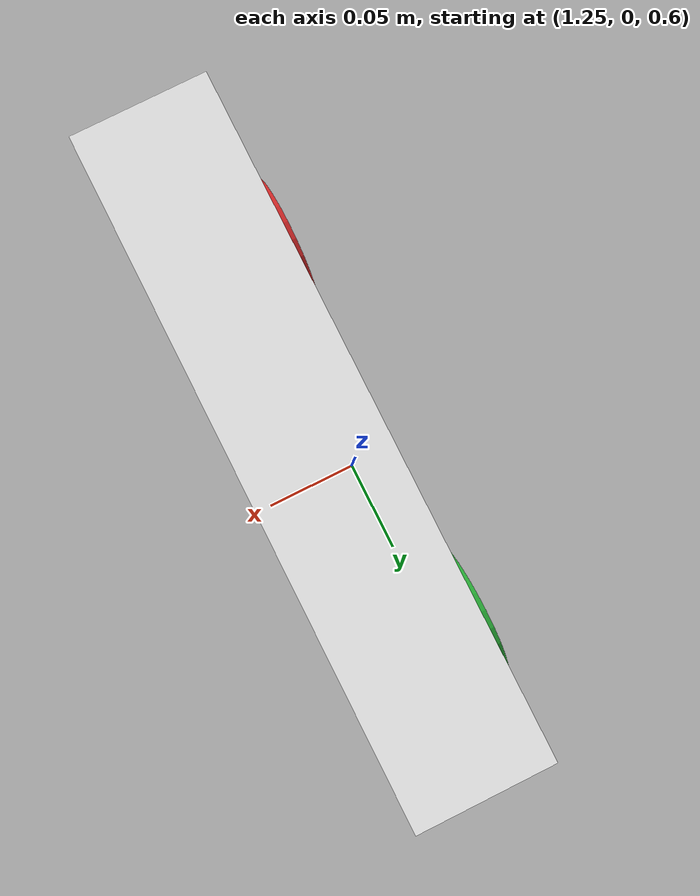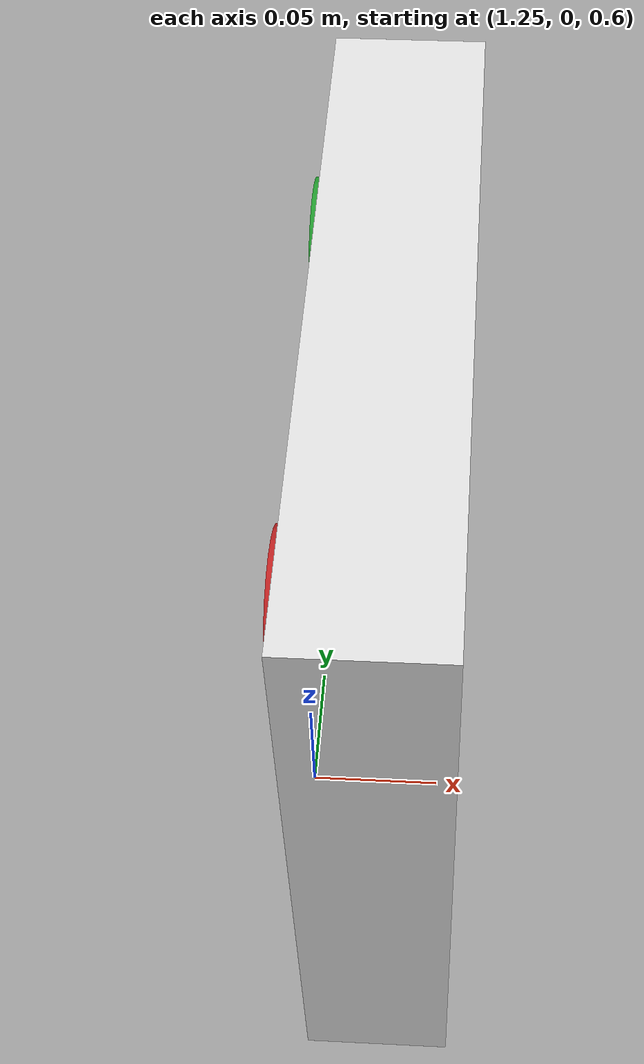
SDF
<sdf version="1.7">
 <world name="default">
  <light name="sun" type="directional">
   <pose>0 0 10 0 -0 0</pose>
   <diffuse>0.8 0.8 0.8 1</diffuse>
   <specular>0.2 0.2 0.2 1</specular>
   <attenuation>
    <range>1000</range>
    <constant>0.9</constant>
    <linear>0.01</linear>
    <quadratic>0.001</quadratic>
   </attenuation>
   <direction>-0.5 0.1 -0.9</direction>
   <spot><inner_angle>0</inner_angle><outer_angle>0</outer_angle><falloff>0</falloff></spot>
  </light>
  <model name="ground_plane">
   <static>1</static>
   <link name="link">
    <collision name="collision">
     <geometry><plane><normal>0 0 1</normal><size>100 100</size></plane></geometry>
     <surface>
      <contact><collide_bitmask>65535</collide_bitmask></contact>
      <friction><ode><mu>100</mu><mu2>50</mu2></ode></friction>
     </surface>
    </collision>
    <visual name="visual">
     <cast_shadows>0</cast_shadows>
     <geometry><plane><normal>0 0 1</normal><size>100 100</size></plane></geometry>
     <material>
      <script><uri>file://media/materials/scripts/gazebo.material</uri><name>Gazebo/Grey</name></script>
     </material>
    </visual>
   </link>
  </model>
  <gravity>0 0 -9.8</gravity>
  <magnetic_field>6e-06 2.3e-05 -4.2e-05</magnetic_field>
  <atmosphere type="adiabatic"/>
  <physics type="ode">
   <max_step_size>0.001</max_step_size>
   <real_time_factor>1</real_time_factor>
   <real_time_update_rate>1000</real_time_update_rate>
  </physics>
  <scene><ambient>0.4 0.4 0.4 1</ambient><background>0.7 0.7 0.7 1</background><shadows>1</shadows></scene>
  <spherical_coordinates>
   <surface_model>EARTH_WGS84</surface_model>
   <latitude_deg>0</latitude_deg>
   <longitude_deg>0</longitude_deg>
   <elevation>0</elevation>
   <heading_deg>0</heading_deg>
  </spherical_coordinates>
  <light name="user_point_light_0" type="point">
   <pose>0.871316 0.209846 1 0 -0 0</pose>
   <diffuse>0.5 0.5 0.5 1</diffuse>
   <specular>0.1 0.1 0.1 1</specular>
   <attenuation>
    <range>20</range>
    <constant>0.5</constant>
    <linear>0.01</linear>
    <quadratic>0.001</quadratic>
   </attenuation>
   <cast_shadows>0</cast_shadows>
   <direction>0 0 -1</direction>
   <spot><inner_angle>0</inner_angle><outer_angle>0</outer_angle><falloff>0</falloff></spot>
  </light>
  <model name="object">
   <link name="base">
    <inertial>
     <pose>0 0 0.021739 0 -0 0</pose>
     <mass>46</mass>
     <inertia><ixx>2.82826</ixx><ixy>0</ixy><ixz>0</ixz><iyy>2.82826</iyy><iyz>0</iyz><izz>2.25</izz></inertia>
    </inertial>
    <collision name="base_collision"><geometry><box><size>0.25 0.25 0.05</size></box></geometry></collision>
    <collision name="base_fixed_joint_lump__cyl1_collision_1">
     <pose>0.075 0.075 0.025 0 -0 0</pose>
     <geometry><cylinder><length>0.01</length><radius>0.025</radius></cylinder></geometry>
    </collision>
    <collision name="base_fixed_joint_lump__cyl2_collision_2">
     <pose>0.075 -0.075 0.025 0 -0 0</pose>
     <geometry><cylinder><length>0.01</length><radius>0.025</radius></cylinder></geometry>
    </collision>
    <collision name="base_fixed_joint_lump__cyl3_collision_3">
     <pose>-0.075 -0.075 0.025 0 -0 0</pose>
     <geometry><cylinder><length>0.01</length><radius>0.025</radius></cylinder></geometry>
    </collision>
    <collision name="base_fixed_joint_lump__cyl4_collision_4">
     <pose>-0.075 0.075 0.025 0 -0 0</pose>
     <geometry><cylinder><length>0.01</length><radius>0.025</radius></cylinder></geometry>
    </collision>
    <visual name="base_visual">
     <geometry><box><size>0.25 0.25 0.05</size></box></geometry>
     <material>
      <script><name>Gazebo/White</name><uri>file://media/materials/scripts/gazebo.material</uri></script>
     </material>
    </visual>
    <visual name="base_fixed_joint_lump__cyl1_visual_1">
     <pose>0.075 0.075 0.025 0 -0 0</pose>
     <geometry><cylinder><length>0.01</length><radius>0.025</radius></cylinder></geometry>
     <material>
      <script><name>Gazebo/Green</name><uri>file://media/materials/scripts/gazebo.material</uri></script>
     </material>
    </visual>
    <visual name="base_fixed_joint_lump__cyl2_visual_2">
     <pose>0.075 -0.075 0.025 0 -0 0</pose>
     <geometry><cylinder><length>0.01</length><radius>0.025</radius></cylinder></geometry>
     <material>
      <script><name>Gazebo/Red</name><uri>file://media/materials/scripts/gazebo.material</uri></script>
     </material>
    </visual>
    <visual name="base_fixed_joint_lump__cyl3_visual_3">
     <pose>-0.075 -0.075 0.025 0 -0 0</pose>
     <geometry><cylinder><length>0.01</length><radius>0.025</radius></cylinder></geometry>
     <material>
      <script><name>Gazebo/Blue</name><uri>file://media/materials/scripts/gazebo.material</uri></script>
     </material>
    </visual>
    <visual name="base_fixed_joint_lump__cyl4_visual_4">
     <pose>-0.075 0.075 0.025 0 -0 0</pose>
     <geometry><cylinder><length>0.01</length><radius>0.025</radius></cylinder></geometry>
     <material>
      <script><name>Gazebo/Yellow</name><uri>file://media/materials/scripts/gazebo.material</uri></script>
     </material>
    </visual>
   </link>
   <pose>1.28162 0.005068 0.743827 3.13434 -1.56186 -3.13435</pose>
  </model>
 </world>
</sdf>
